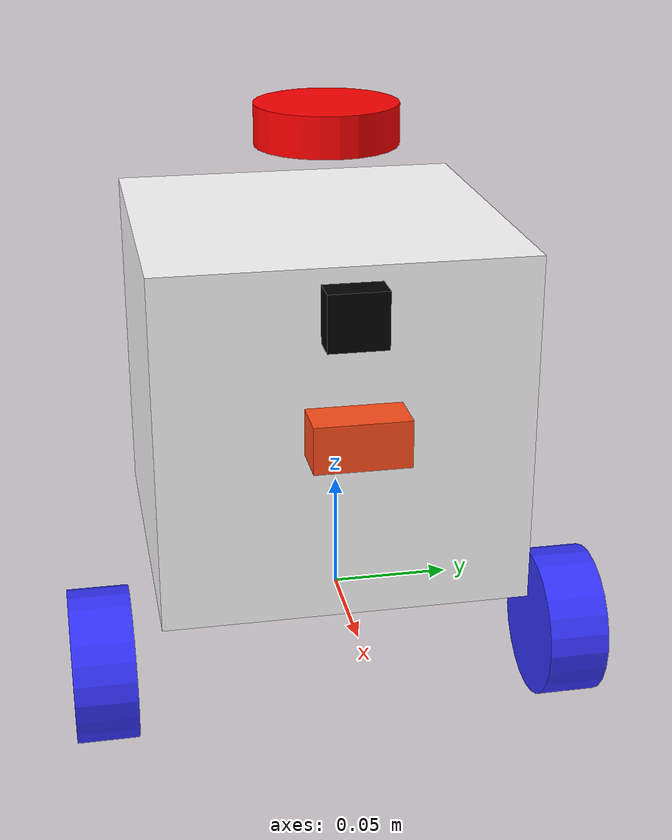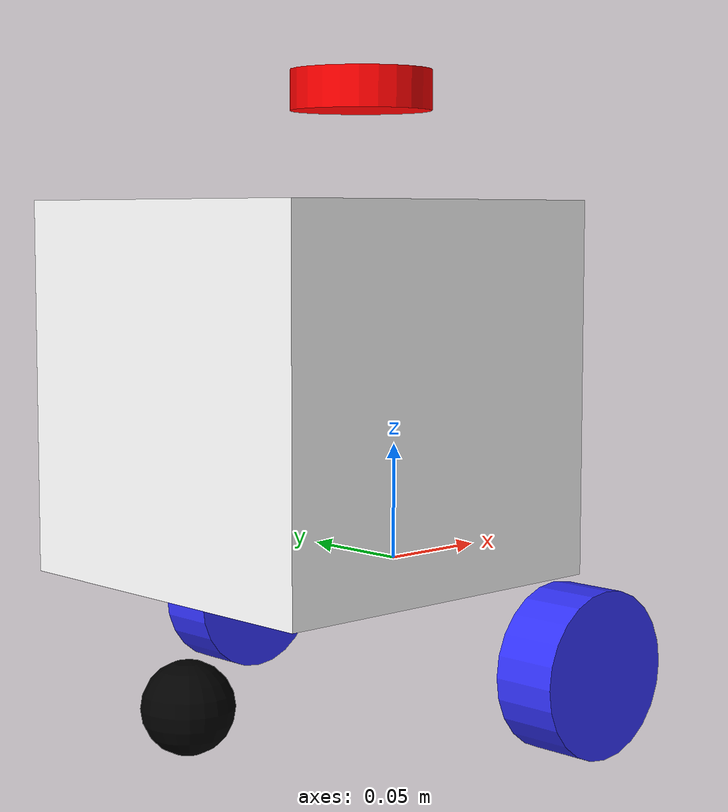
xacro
<?xml version="1.0"?>
<robot xmlns:xacro="http://www.ros.org/wiki/xacro"  name="robot">

    <xacro:arg name="sim_mode" default="false"/>

    <xacro:arg name="use_ros2_control" default="true"/>
    <xacro:if value="$(arg use_ros2_control)">
        <xacro:include filename="ros2_control.xacro"/>
    </xacro:if>
    <xacro:unless value="$(arg use_ros2_control)">
        <xacro:include filename="gazebo_control.xacro"/>
    </xacro:unless>

    <xacro:include filename="robot_core.xacro"/>
    <xacro:include filename="lidar.xacro"/>
    <xacro:include filename="camera.xacro"/>
    <xacro:include filename="tof_camera.xacro"/>

</robot>

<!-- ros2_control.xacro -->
<robot xmlns:xacro="http://www.ros.org/wiki/xacro">

    <xacro:include filename="global_properties.xacro"/>

    <xacro:unless value="$(arg sim_mode)">
        <ros2_control name="RealRobot" type="system">
            <hardware>
                <plugin>diffdrive_arduino/DiffDriveArduinoHardware</plugin>
                <param name="left_wheel_name">left_wheel_joint</param>
                <param name="right_wheel_name">right_wheel_joint</param>
                <param name="loop_rate">1.0</param>
                <param name="device">/dev/serial/by-id/usb-Espressif_USB_JTAG_serial_debug_unit_64:E8:33:83:BA:2C-if00</param>
                <param name="baud_rate">230400</param>
                <param name="timeout_ms">1000</param>
                <param name="enc_counts_per_rev">1975</param>
            </hardware>
            <joint name="left_wheel_joint">
                <command_interface name="velocity">
                    <param name="min">-10</param>
                    <param name="max">10</param>
                </command_interface>
                <state_interface name="position"/>
                <state_interface name="velocity"/>
            </joint>
            <joint name="right_wheel_joint">
                <command_interface name="velocity">
                    <param name="min">-10</param>
                    <param name="max">10</param>
                </command_interface>
                <state_interface name="position"/>
                <state_interface name="velocity"/>
            </joint>
        </ros2_control>
    </xacro:unless>

    <xacro:if value="$(arg sim_mode)">
        <ros2_control name="GazeboSystem" type="system">
            <hardware>
                <plugin>gazebo_ros2_control/GazeboSystem</plugin>
            </hardware>
            <joint name="left_wheel_joint">
                <command_interface name="velocity">
                    <param name="min">-10</param>
                    <param name="max">10</param>
                </command_interface>
                <state_interface name="velocity"/>
                <state_interface name="position"/>
            </joint>
            <joint name="right_wheel_joint">
                <command_interface name="velocity">
                    <param name="min">-10</param>
                    <param name="max">10</param>
                </command_interface>
                <state_interface name="velocity"/>
                <state_interface name="position"/>
            </joint>
        </ros2_control>
    </xacro:if>

    <gazebo>
        <plugin name="gazebo_ros2_control" filename="libgazebo_ros2_control.so">
            <parameters>$(find penelobot)/config/my_controllers.yaml</parameters>
            <parameters>$(find penelobot)/config/gaz_ros2_ctl_use_sim.yaml</parameters>
        </plugin>
    </gazebo>
</robot>

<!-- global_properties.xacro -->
<robot xmlns:xacro="http://www.ros.org/wiki/xacro">
    <xacro:property name="chassis_length" value="0.160"/>
    <xacro:property name="chassis_width" value="0.160"/>
    <xacro:property name="chassis_height" value="0.155"/>
    <xacro:property name="chassis_mass" value="1.5"/>
    <xacro:property name='wheel_diameter' value='0.0675'/>
    <xacro:property name="wheel_thickness" value="0.027"/>
    <xacro:property name="wheel_mass" value="0.05"/>
    <xacro:property name="wheel_offset_x" value="0.0"/>
    <xacro:property name="wheel_offset_y" value="0.105"/> <!-- Offset is slightly lower than the wheel center to account for wheel pointof contact -->
    <xacro:property name="wheel_offset_z" value="-0.031"/>
    <xacro:property name="caster_wheel_diameter" value="0.038"/>
    <xacro:property name="caster_wheel_mass" value="0.01"/>
    <xacro:property name="caster_wheel_offset_x" value="-0.1146"/>
    <xacro:property name="caster_wheel_offset_z" value="${wheel_offset_z - wheel_diameter/2 + caster_wheel_diameter/2}"/>

    <xacro:property name="camera_length" value="0.013"/>
    <xacro:property name="camera_width" value="0.025"/>
    <xacro:property name="camera_height" value="0.024"/>
    <xacro:property name="camera_fov_deg" value="77"/>

    <xacro:property name="tof_camera_length" value="0.020" />
    <xacro:property name="tof_camera_width" value="0.040" />
    <xacro:property name="tof_camera_height" value="0.020" />
    <!-- The horizontal FOV for the 100x100 mode is typically around 80-90 degrees.
         We can calculate it from the intrinsics if needed, but 85 is a good start. -->
    <xacro:property name="tof_camera_fov_deg" value="85.0" />
</robot>

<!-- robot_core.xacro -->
<robot xmlns:xacro="http://www.ros.org/wiki/xacro"  name="robot">
    <xacro:include filename="materials.xacro"/>
    <xacro:include filename="inertial_macros.xacro"/>
    <xacro:include filename="global_properties.xacro"/>

    <link name="base_link"/>

    <joint name="base_footprint_joint" type="fixed">
        <parent link="base_link"/>
        <child link="base_footprint"/>
        <origin xyz="0 0 0" rpy="0 0 0"/>
    </joint>

    <link name="base_footprint">
    </link>

    <!-- Main Stack Link -->

    <joint name="main_stack_joint" type="fixed">
        <parent link="base_link"/>
        <child link="main_stack"/>
        <origin xyz="0 0 0"/>
    </joint>

    <link name="main_stack">
        <visual>
            <origin xyz="-0.05 0 ${chassis_height/2}"/>
            <geometry>
                <box size="${chassis_length} ${chassis_width} ${chassis_height}"/>
            </geometry>
            <material name="white"/>
        </visual>
        <collision>
            <origin xyz="-0.05 0 ${chassis_height/2}"/>
            <geometry>
                <box size="${chassis_length} ${chassis_width} ${chassis_height}"/>
            </geometry>
        </collision>
        <xacro:inertial_box mass="0.5" x="${chassis_length}" y="${chassis_width}" z="${chassis_height}">
            <origin xyz="-0.05 0 ${chassis_height/2}" rpy="0 0 0"/>
        </xacro:inertial_box>
    </link>

    <gazebo reference="main_stack">
        <material>Gazebo/White</material>
    </gazebo>

    <!-- LEFT WHEEL LINK -->
    <joint name="left_wheel_joint" type="continuous">
        <parent link="base_link"/>
        <child link="left_wheel"/>
        <origin xyz="${wheel_offset_x} ${wheel_offset_y} ${wheel_offset_z}" rpy="-${pi/2} 0 0"/>
        <axis xyz="0 0 1"/>
    </joint>

    <link name="left_wheel">
        <visual>
            <geometry>
                <cylinder radius="${wheel_diameter/2}" length="${wheel_thickness}"/>
            </geometry>
            <material name="blue"/>
        </visual>
        <collision>
            <geometry>
                <sphere radius="${wheel_diameter/2}"/>
            </geometry>
        </collision>
        <xacro:inertial_cylinder mass="${wheel_mass}" radius="${wheel_diameter/2}" length="${wheel_thickness}">
            <origin xyz="0 0 0" rpy="0 0 0"/>
        </xacro:inertial_cylinder>
    </link>

    <gazebo reference="left_wheel">
        <material>Gazebo/Blue</material>
    </gazebo>

    <!-- RIGHT WHEEL LINK -->

    <joint name="right_wheel_joint" type="continuous">
        <parent link="base_link"/>
        <child link="right_wheel"/>
        <origin xyz="${wheel_offset_x} ${-wheel_offset_y} ${wheel_offset_z}" rpy="${pi/2} 0 0"/>
        <axis xyz="0 0 -1"/>
    </joint>

    <link name="right_wheel">
        <visual>
            <geometry>
                <cylinder radius="${wheel_diameter/2}" length="${wheel_thickness}"/>
            </geometry>
            <material name="blue"/>
        </visual>
        <collision>
            <geometry>
                <sphere radius="${wheel_diameter/2}"/>
            </geometry>
        </collision>
        <xacro:inertial_cylinder mass="${wheel_mass}" radius="${wheel_diameter/2}" length="${wheel_thickness}">
            <origin xyz="0 0 0" rpy="0 0 0"/>
        </xacro:inertial_cylinder>
    </link>

    <gazebo reference="right_wheel">
        <material>Gazebo/Blue</material>
    </gazebo>

    <!-- CASTER WHEEL LINK -->
    <joint name="caster_wheel_link" type="fixed">
        <parent link="main_stack"/>
        <child link="caster_wheel"/>
        <origin xyz="${caster_wheel_offset_x} 0 ${caster_wheel_offset_z}"/>
    </joint>

    <link name="caster_wheel">
        <visual>
            <geometry>
                <sphere radius="${caster_wheel_diameter/2}"/>
            </geometry>
            <material name="black"/>
        </visual>
        <collision>
            <geometry>
                <sphere radius="${caster_wheel_diameter/2}"/>
            </geometry>
        </collision>
        <xacro:inertial_sphere mass="${caster_wheel_mass}" radius="${caster_wheel_diameter/2}">
            <origin xyz="0 0 0" rpy="0 0 0"/>
        </xacro:inertial_sphere>
    </link>

    <gazebo reference="caster_wheel">
        <material>Gazebo/Black</material>
        <mu1 value="0.0001"/>
        <mu2 value="0.0001"/>
    </gazebo>
</robot>

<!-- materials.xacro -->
<robot xmlns:xacro="http://www.ros.org/wiki/xacro">
    <material name="white">
        <color rgba="1 1 1 1" />
    </material>

    <material name="red">
        <color rgba="1 0 0 1" />
    </material>

    <material name="orange">
        <color rgba="1 0.3 0.1 1"/>
    </material>

    <material name="blue">
        <color rgba="0.2 0.2 1 1"/>
    </material>

    <material name="black">
        <color rgba="0 0 0 1"/>
    </material>
</robot>

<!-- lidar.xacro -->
<robot xmlns:xacro="http://www.ros.org/wiki/xacro">
    <xacro:include filename="global_properties.xacro"/>

    <joint name="laser_joint" type="fixed">
        <parent link="main_stack"/>
        <child link="laser_frame"/>
        <origin xyz="-0.02 0 ${chassis_height+0.046}" rpy="${pi} 0 0"/>
    </joint>

    <link name="laser_frame">
        <visual>
            <geometry>
                <cylinder radius="0.03" length="0.017"/>
            </geometry>
            <material name="red"/>
        </visual>
        <collision>
            <geometry>
                <cylinder radius="0.03" length="0.017"/>
            </geometry>
        </collision>
        <xacro:inertial_cylinder mass="0.05" radius="0.03" length="0.017">
            <origin xyz="0 0 0" rpy="0 0 0"/>
        </xacro:inertial_cylinder>
    </link>
    <gazebo reference="laser_frame">
        <material>Gazebo/Red</material>
        <sensor name="laser" type="ray">
            <pose> 0 0 0 0 0 0</pose>
            <visualize>false</visualize>
            <update_rate>10</update_rate>
            <ray>
                <scan>
                    <horizontal>
                        <samples>360</samples>
                        <resolution>1</resolution>
                        <min_angle>-3.14</min_angle>
                        <max_angle>3.14</max_angle>
                    </horizontal>
                </scan>
                <range>
                    <min>0.3</min>
                    <max>12</max>
                    <resolution>0.1</resolution>
                </range>
            </ray>
            <plugin name="laser_controller" filename="libgazebo_ros_ray_sensor.so">
                <ros>
                    <argument>~/out:=scan</argument>
                </ros>
                <output_type>sensor_msgs/LaserScan</output_type>
                <frame_name>laser_frame</frame_name>
            </plugin>
        </sensor>
    </gazebo>
</robot>

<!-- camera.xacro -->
<robot xmlns:xacro="http://www.ros.org/wiki/xacro">
    <xacro:include filename="global_properties.xacro"/>

    <joint name="camera_joint" type="fixed">
        <parent link="base_link"/>
        <child link="camera_link"/>
        <origin xyz="${0.029+camera_length} 0 ${0.15015-camera_height/2}" rpy="${pi} 0 0"/>
    </joint>

    <link name="camera_link">
        <visual>
            <geometry>
                <box size="${camera_length} ${camera_width} ${camera_height}"/>
            </geometry>
            <material name="black"/>
        </visual>
        <collision>
            <geometry>
                <box size="${camera_length} ${camera_width} ${camera_height}"/>
            </geometry>
        </collision>
        <xacro:inertial_box mass="0.015" x="${camera_length}" y="${camera_width}" z="${camera_height}">
            <origin xyz="0 0 0" rpy="0 0 0"/>
        </xacro:inertial_box>
    </link>

    <joint name="camera_optical_joint" type="fixed">
        <parent link="camera_link"/>
        <child link="camera_link_optical"/>
        <origin xyz="0 0 0" rpy="${-pi/2} 0 ${-pi/2}"/>
    </joint>

    <link name="camera_link_optical"/>

    <gazebo reference="camera_link">
        <material>Gazebo/Black</material>
        <sensor name="camera" type="camera">
            <pose> 0 0 0 0 0 0</pose>
            <visualize>true</visualize>
            <update_rate>10</update_rate>
            <camera>
                <horizontal_fov>${camera_fov_deg*pi/180}</horizontal_fov>
                <image>
                    <format>R8G8B8</format>
                    <width>640</width>
                    <height>480</height>
                </image>
                <clip>
                    <near>0.03</near>
                    <far>8.0</far>
                </clip>
            </camera>
            <plugin name="camera_controller" filename="libgazebo_ros_camera.so">
                <frame_name>camera_link_optical</frame_name>
            </plugin>
        </sensor>
        </gazebo>
</robot>

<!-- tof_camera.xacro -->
<robot xmlns:xacro="http://www.ros.org/wiki/xacro">

    <!-- Include global properties -->
    <xacro:include filename="global_properties.xacro" />

    <!-- The joint connecting the ToF camera to the robot's base -->
    <joint name="tof_camera_joint" type="fixed">
        <parent link="base_link"/>
        <child link="tof_camera_link"/>
        <origin xyz="${0.029+tof_camera_length} 0 ${0.15015-0.05-tof_camera_height/2}" rpy="0 0 0"/>
    </joint>

    <!-- The physical link representing the ToF camera -->
    <link name="tof_camera_link">
        <visual>
            <geometry>
                <box size="${tof_camera_length} ${tof_camera_width} ${tof_camera_height}"/>
            </geometry>
            <material name="orange"/> <!-- Use a different color to distinguish it -->
        </visual>
        <collision>
            <geometry>
                <box size="${tof_camera_length} ${tof_camera_width} ${tof_camera_height}"/>
            </geometry>
        </collision>
        <xacro:inertial_box mass="0.020" x="${tof_camera_length}" y="${tof_camera_width}" z="${tof_camera_height}">
            <origin xyz="0 0 0" rpy="0 0 0"/>
        </xacro:inertial_box>
    </link>

    <joint name="tof_camera_optical_joint" type="fixed">
        <parent link="tof_camera_link"/>
        <child link="tof_camera_optical_frame"/>
        <origin xyz="0 0 0" rpy="${-pi/2} ${-pi/2} ${-pi/2}"/>
    </joint>

    <link name="tof_camera_optical_frame"/>

    <gazebo reference="tof_camera_link">
        <material>Gazebo/Orange</material>
        <sensor name="tof_camera_sensor" type="depth">
            <pose> 0 0 0 0 0 0</pose>
            <visualize>false</visualize>
            <update_rate>10</update_rate> <!-- Match the default FPS of the driver -->
            <camera>
                <horizontal_fov>${tof_camera_fov_deg*pi/180}</horizontal_fov>
                <image>
                    <!-- Corresponds to binning=1 -->
                    <width>100</width>
                    <height>100</height>
                    <format>R_FLOAT32</format>
                </image>
                <clip>
                    <!-- Set realistic min/max range for a ToF camera -->
                    <near>0.1</near>
                    <far>2.5</far>
                </clip>
            </camera>
            <plugin name="tof_camera_controller" filename="libgazebo_ros_camera.so">
                <!-- Remap the default Gazebo topics to match our driver's topics -->
                <ros>
                    <namespace>/tof</namespace>
                    <remapping>image_raw:=depth</remapping>
                    <remapping>camera_info:=depth/camera_info</remapping>
                    <remapping>points:=cloud</remapping>
                </ros>

                <!-- The frame where data is published -->
                <frame_name>tof_camera_optical_frame</frame_name>

                <!-- PointCloud settings -->
                <point_cloud_cutoff>0.1</point_cloud_cutoff>
                <point_cloud_cutoff_max>5.0</point_cloud_cutoff_max>
            </plugin>
        </sensor>
    </gazebo>

</robot>
